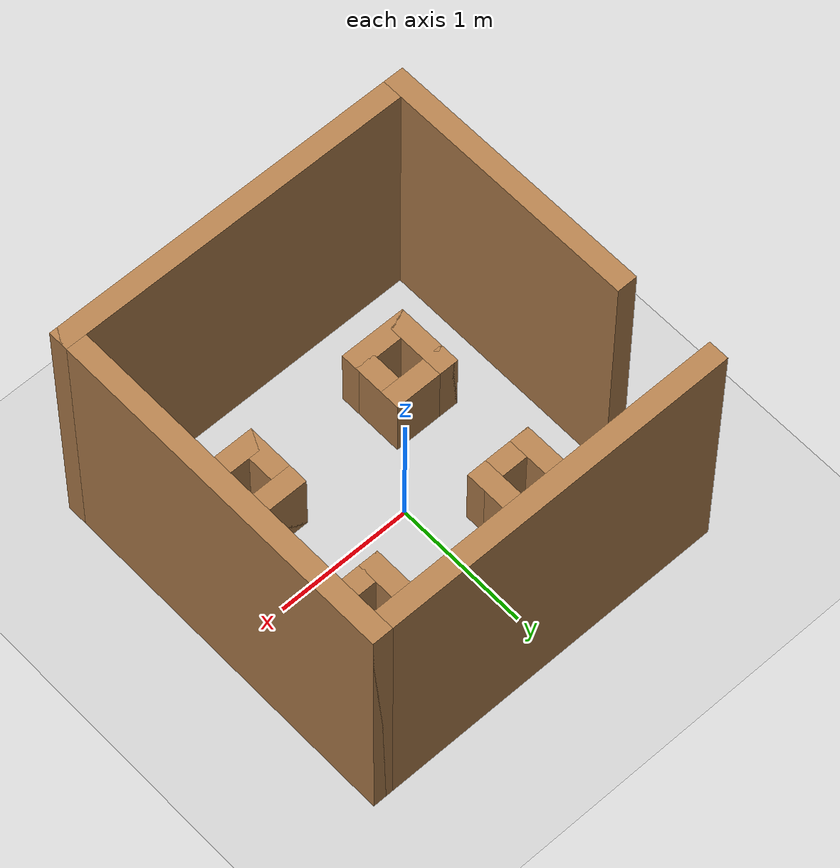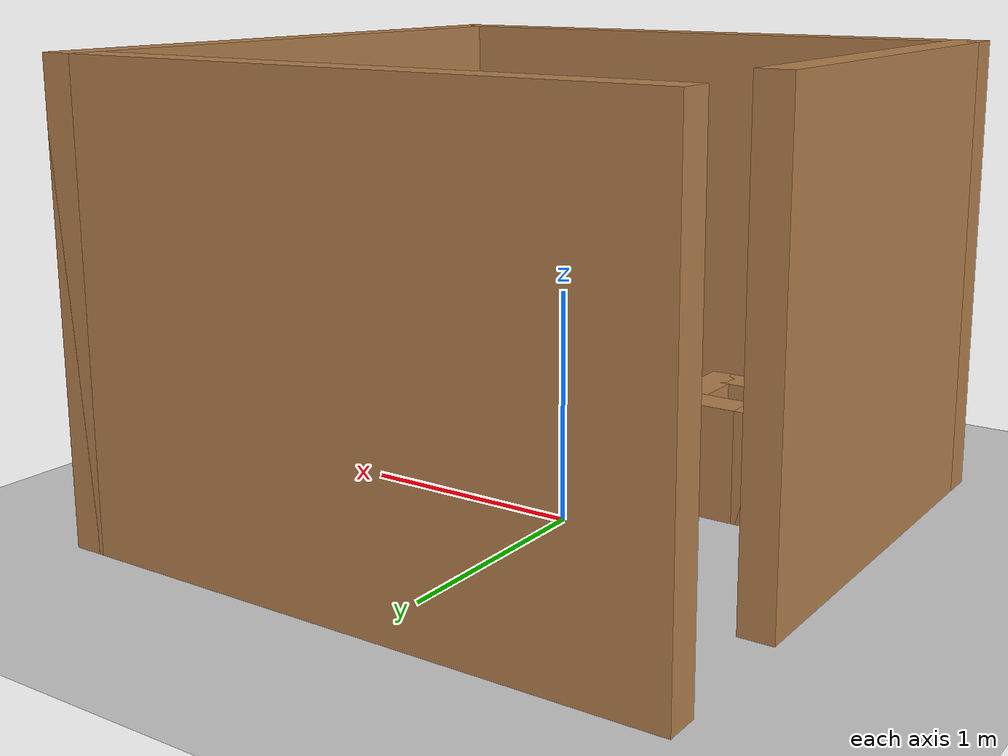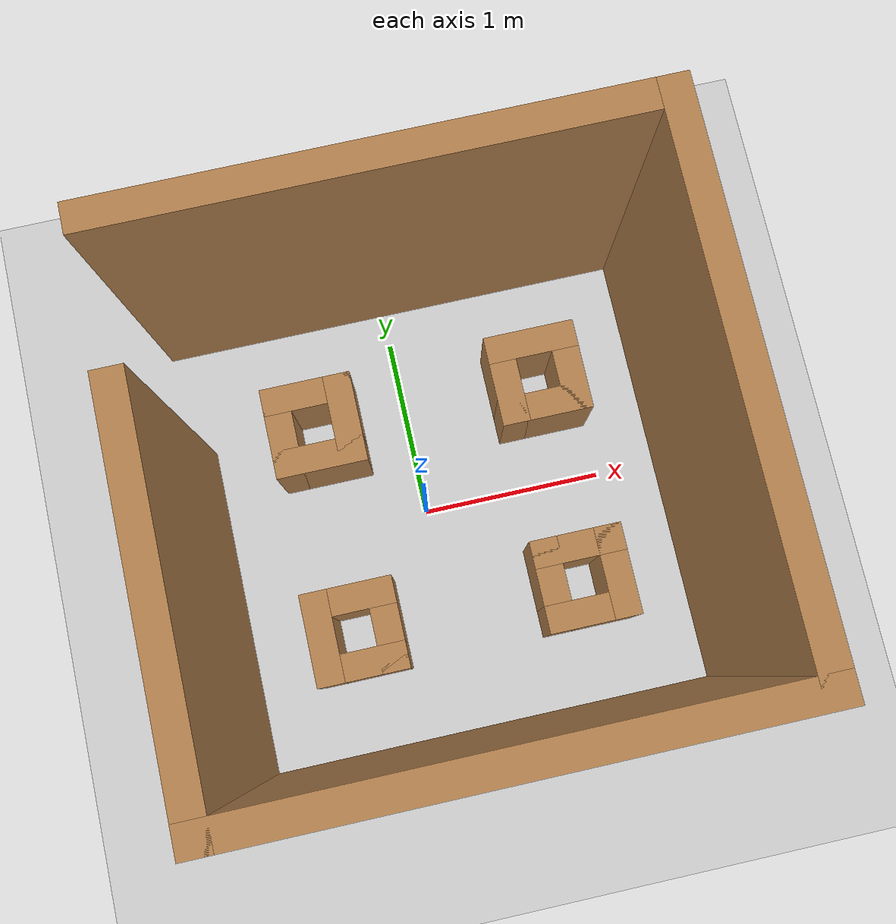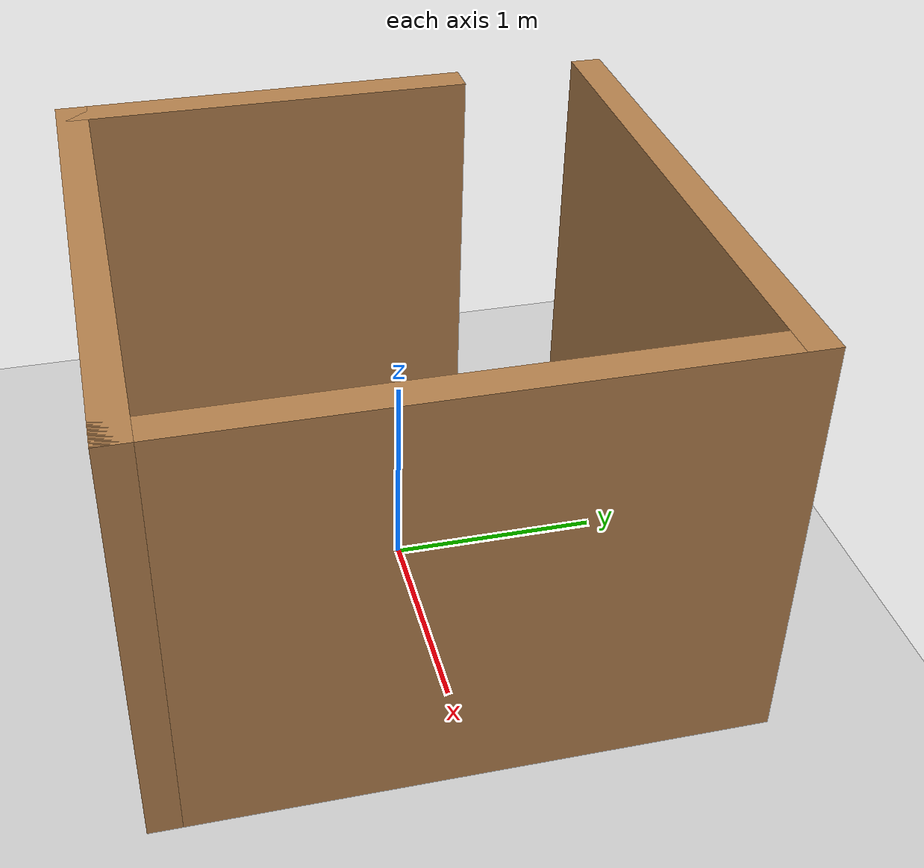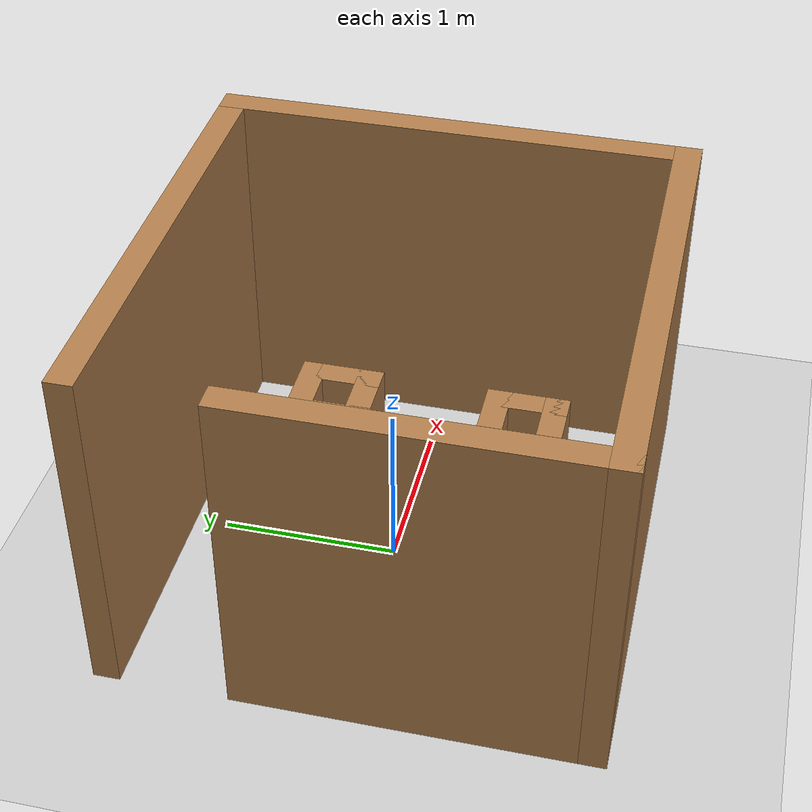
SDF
<sdf version="1.6">
 <world name="default">
  <light name="sun" type="directional">
   <pose>0 0 10 0 -0 0</pose>
   <diffuse>0.8 0.8 0.8 1</diffuse>
   <specular>0.2 0.2 0.2 1</specular>
   <attenuation>
    <range>1000</range>
    <constant>0.9</constant>
    <linear>0.01</linear>
    <quadratic>0.001</quadratic>
   </attenuation>
   <direction>-0.5 0.1 -0.9</direction>
  </light>
  <model name="ground_plane">
   <static>1</static>
   <link name="link">
    <collision name="collision">
     <geometry><plane><normal>0 0 1</normal><size>100 100</size></plane></geometry>
     <surface>
      <contact><collide_bitmask>65535</collide_bitmask></contact>
      <friction><ode><mu>100</mu><mu2>50</mu2></ode></friction>
     </surface>
    </collision>
    <visual name="visual">
     <cast_shadows>0</cast_shadows>
     <geometry><plane><normal>0 0 1</normal><size>100 100</size></plane></geometry>
     <material>
      <script><uri>file://media/materials/scripts/gazebo.material</uri><name>Gazebo/Grey</name></script>
     </material>
    </visual>
   </link>
  </model>
  <gravity>0 0 -9.8</gravity>
  <magnetic_field>6e-06 2.3e-05 -4.2e-05</magnetic_field>
  <atmosphere type="adiabatic"/>
  <physics name="default_physics" default="0" type="ode">
   <max_step_size>0.001</max_step_size>
   <real_time_factor>1</real_time_factor>
   <real_time_update_rate>1000</real_time_update_rate>
  </physics>
  <scene><ambient>0.4 0.4 0.4 1</ambient><background>0.7 0.7 0.7 1</background><shadows>1</shadows></scene>
  <audio><device>default</device></audio>
  <spherical_coordinates>
   <surface_model>EARTH_WGS84</surface_model>
   <latitude_deg>0</latitude_deg>
   <longitude_deg>0</longitude_deg>
   <elevation>0</elevation>
   <heading_deg>0</heading_deg>
  </spherical_coordinates>
  <model name="aiitra_world1">
   <pose>0.11 -0.03 0 0 -0 0</pose>
   <link name="Wall_0">
    <collision name="Wall_0_Collision">
     <geometry><box><size>0.5 0.15 0.5</size></box></geometry>
     <pose>0 0 0.25 0 -0 0</pose>
    </collision>
    <visual name="Wall_0_Visual">
     <pose>0 0 0.25 0 -0 0</pose>
     <geometry><box><size>0.5 0.15 0.5</size></box></geometry>
     <material>
      <script><uri>file://media/materials/scripts/gazebo.material</uri><name>Gazebo/Wood</name></script>
      <ambient>0.435294 0.796078 0.67451 1</ambient>
     </material>
     <meta><layer>0</layer></meta>
    </visual>
    <pose>-0.615 0.73 0 0 -0 0</pose>
   </link>
   <link name="Wall_1">
    <collision name="Wall_1_Collision">
     <geometry><box><size>0.5 0.15 0.5</size></box></geometry>
     <pose>0 0 0.25 0 -0 0</pose>
    </collision>
    <visual name="Wall_1_Visual">
     <pose>0 0 0.25 0 -0 0</pose>
     <geometry><box><size>0.5 0.15 0.5</size></box></geometry>
     <material>
      <script><uri>file://media/materials/scripts/gazebo.material</uri><name>Gazebo/Wood</name></script>
      <ambient>0.435294 0.796078 0.67451 1</ambient>
     </material>
     <meta><layer>0</layer></meta>
    </visual>
    <pose>-0.44 0.555 0 0 -0 -1.5708</pose>
   </link>
   <link name="Wall_10">
    <collision name="Wall_10_Collision">
     <geometry><box><size>0.5 0.15 0.5</size></box></geometry>
     <pose>0 0 0.25 0 -0 0</pose>
    </collision>
    <visual name="Wall_10_Visual">
     <pose>0 0 0.25 0 -0 0</pose>
     <geometry><box><size>0.5 0.15 0.5</size></box></geometry>
     <material>
      <script><uri>file://media/materials/scripts/gazebo.material</uri><name>Gazebo/Wood</name></script>
      <ambient>0.435294 0.796078 0.67451 1</ambient>
     </material>
     <meta><layer>0</layer></meta>
    </visual>
    <pose>-0.625 -0.4 0 0 -0 0</pose>
   </link>
   <link name="Wall_11">
    <collision name="Wall_11_Collision">
     <geometry><box><size>0.5 0.15 0.5</size></box></geometry>
     <pose>0 0 0.25 0 -0 0</pose>
    </collision>
    <visual name="Wall_11_Visual">
     <pose>0 0 0.25 0 -0 0</pose>
     <geometry><box><size>0.5 0.15 0.5</size></box></geometry>
     <material>
      <script><uri>file://media/materials/scripts/gazebo.material</uri><name>Gazebo/Wood</name></script>
      <ambient>0.435294 0.796078 0.67451 1</ambient>
     </material>
     <meta><layer>0</layer></meta>
    </visual>
    <pose>-0.45 -0.575 0 0 -0 -1.5708</pose>
   </link>
   <link name="Wall_12">
    <collision name="Wall_12_Collision">
     <geometry><box><size>0.5 0.15 0.5</size></box></geometry>
     <pose>0 0 0.25 0 -0 0</pose>
    </collision>
    <visual name="Wall_12_Visual">
     <pose>0 0 0.25 0 -0 0</pose>
     <geometry><box><size>0.5 0.15 0.5</size></box></geometry>
     <material>
      <script><uri>file://media/materials/scripts/gazebo.material</uri><name>Gazebo/Wood</name></script>
      <ambient>0.435294 0.796078 0.67451 1</ambient>
     </material>
     <meta><layer>0</layer></meta>
    </visual>
    <pose>-0.625 -0.75 0 0 -0 3.14159</pose>
   </link>
   <link name="Wall_13">
    <collision name="Wall_13_Collision">
     <geometry><box><size>0.5 0.15 0.5</size></box></geometry>
     <pose>0 0 0.25 0 -0 0</pose>
    </collision>
    <visual name="Wall_13_Visual">
     <pose>0 0 0.25 0 -0 0</pose>
     <geometry><box><size>0.5 0.15 0.5</size></box></geometry>
     <material>
      <script><uri>file://media/materials/scripts/gazebo.material</uri><name>Gazebo/Wood</name></script>
      <ambient>0.435294 0.796078 0.67451 1</ambient>
     </material>
     <meta><layer>0</layer></meta>
    </visual>
    <pose>-0.8 -0.575 0 0 -0 1.5708</pose>
   </link>
   <link name="Wall_15">
    <collision name="Wall_15_Collision">
     <geometry><box><size>0.5 0.15 0.5</size></box></geometry>
     <pose>0 0 0.25 0 -0 0</pose>
    </collision>
    <visual name="Wall_15_Visual">
     <pose>0 0 0.25 0 -0 0</pose>
     <geometry><box><size>0.5 0.15 0.5</size></box></geometry>
     <material>
      <script><uri>file://media/materials/scripts/gazebo.material</uri><name>Gazebo/Wood</name></script>
      <ambient>0.435294 0.796078 0.67451 1</ambient>
     </material>
     <meta><layer>0</layer></meta>
    </visual>
    <pose>0.625 -0.39 0 0 -0 0</pose>
   </link>
   <link name="Wall_16">
    <collision name="Wall_16_Collision">
     <geometry><box><size>0.5 0.15 0.5</size></box></geometry>
     <pose>0 0 0.25 0 -0 0</pose>
    </collision>
    <visual name="Wall_16_Visual">
     <pose>0 0 0.25 0 -0 0</pose>
     <geometry><box><size>0.5 0.15 0.5</size></box></geometry>
     <material>
      <script><uri>file://media/materials/scripts/gazebo.material</uri><name>Gazebo/Wood</name></script>
      <ambient>0.435294 0.796078 0.67451 1</ambient>
     </material>
     <meta><layer>0</layer></meta>
    </visual>
    <pose>0.8 -0.565 0 0 -0 -1.5708</pose>
   </link>
   <link name="Wall_17">
    <collision name="Wall_17_Collision">
     <geometry><box><size>0.5 0.15 0.5</size></box></geometry>
     <pose>0 0 0.25 0 -0 0</pose>
    </collision>
    <visual name="Wall_17_Visual">
     <pose>0 0 0.25 0 -0 0</pose>
     <geometry><box><size>0.5 0.15 0.5</size></box></geometry>
     <material>
      <script><uri>file://media/materials/scripts/gazebo.material</uri><name>Gazebo/Wood</name></script>
      <ambient>0.435294 0.796078 0.67451 1</ambient>
     </material>
     <meta><layer>0</layer></meta>
    </visual>
    <pose>0.625 -0.74 0 0 -0 3.14159</pose>
   </link>
   <link name="Wall_18">
    <collision name="Wall_18_Collision">
     <geometry><box><size>0.5 0.15 0.5</size></box></geometry>
     <pose>0 0 0.25 0 -0 0</pose>
    </collision>
    <visual name="Wall_18_Visual">
     <pose>0 0 0.25 0 -0 0</pose>
     <geometry><box><size>0.5 0.15 0.5</size></box></geometry>
     <material>
      <script><uri>file://media/materials/scripts/gazebo.material</uri><name>Gazebo/Wood</name></script>
      <ambient>0.435294 0.796078 0.67451 1</ambient>
     </material>
     <meta><layer>0</layer></meta>
    </visual>
    <pose>0.45 -0.565 0 0 -0 1.5708</pose>
   </link>
   <link name="Wall_2">
    <collision name="Wall_2_Collision">
     <geometry><box><size>0.5 0.15 0.5</size></box></geometry>
     <pose>0 0 0.25 0 -0 0</pose>
    </collision>
    <visual name="Wall_2_Visual">
     <pose>0 0 0.25 0 -0 0</pose>
     <geometry><box><size>0.5 0.15 0.5</size></box></geometry>
     <material>
      <script><uri>file://media/materials/scripts/gazebo.material</uri><name>Gazebo/Wood</name></script>
      <ambient>0.435294 0.796078 0.67451 1</ambient>
     </material>
     <meta><layer>0</layer></meta>
    </visual>
    <pose>-0.615 0.38 0 0 -0 3.14159</pose>
   </link>
   <link name="Wall_20">
    <collision name="Wall_20_Collision">
     <geometry><box><size>2.75 0.15 2</size></box></geometry>
     <pose>0 0 1 0 -0 0</pose>
    </collision>
    <visual name="Wall_20_Visual">
     <pose>0 0 1 0 -0 0</pose>
     <geometry><box><size>2.75 0.15 2</size></box></geometry>
     <material>
      <script><uri>file://media/materials/scripts/gazebo.material</uri><name>Gazebo/Wood</name></script>
      <ambient>0.996078 0.47451 0.0196078 1</ambient>
     </material>
     <meta><layer>0</layer></meta>
    </visual>
    <pose>0 1.3 0 0 -0 0</pose>
   </link>
   <link name="Wall_21">
    <collision name="Wall_21_Collision">
     <geometry><box><size>2.75 0.15 2</size></box></geometry>
     <pose>0 0 1 0 -0 0</pose>
    </collision>
    <visual name="Wall_21_Visual">
     <pose>0 0 1 0 -0 0</pose>
     <geometry><box><size>2.75 0.15 2</size></box></geometry>
     <material>
      <script><uri>file://media/materials/scripts/gazebo.material</uri><name>Gazebo/Wood</name></script>
      <ambient>0.996078 0.47451 0.0196078 1</ambient>
     </material>
     <meta><layer>0</layer></meta>
    </visual>
    <pose>1.3 -0 0 0 -0 -1.5708</pose>
   </link>
   <link name="Wall_22">
    <collision name="Wall_22_Collision">
     <geometry><box><size>2.75 0.15 2</size></box></geometry>
     <pose>0 0 1 0 -0 0</pose>
    </collision>
    <visual name="Wall_22_Visual">
     <pose>0 0 1 0 -0 0</pose>
     <geometry><box><size>2.75 0.15 2</size></box></geometry>
     <material>
      <script><uri>file://media/materials/scripts/gazebo.material</uri><name>Gazebo/Wood</name></script>
      <ambient>0.996078 0.47451 0.0196078 1</ambient>
     </material>
     <meta><layer>0</layer></meta>
    </visual>
    <pose>0 -1.3 0 0 -0 3.14159</pose>
   </link>
   <link name="Wall_23">
    <collision name="Wall_23_Collision">
     <geometry><box><size>2 0.15 2</size></box></geometry>
     <pose>0 0 1 0 -0 0</pose>
    </collision>
    <visual name="Wall_23_Visual">
     <pose>0 0 1 0 -0 0</pose>
     <geometry><box><size>2 0.15 2</size></box></geometry>
     <material>
      <script><uri>file://media/materials/scripts/gazebo.material</uri><name>Gazebo/Wood</name></script>
      <ambient>0.996078 0.47451 0.0196078 1</ambient>
     </material>
     <meta><layer>0</layer></meta>
    </visual>
    <pose>-1.3 -0.375 0 0 -0 1.5708</pose>
   </link>
   <link name="Wall_3">
    <collision name="Wall_3_Collision">
     <geometry><box><size>0.5 0.15 0.5</size></box></geometry>
     <pose>0 0 0.25 0 -0 0</pose>
    </collision>
    <visual name="Wall_3_Visual">
     <pose>0 0 0.25 0 -0 0</pose>
     <geometry><box><size>0.5 0.15 0.5</size></box></geometry>
     <material>
      <script><uri>file://media/materials/scripts/gazebo.material</uri><name>Gazebo/Wood</name></script>
      <ambient>0.435294 0.796078 0.67451 1</ambient>
     </material>
     <meta><layer>0</layer></meta>
    </visual>
    <pose>-0.79 0.555 0 0 -0 1.5708</pose>
   </link>
   <link name="Wall_5">
    <collision name="Wall_5_Collision">
     <geometry><box><size>0.5 0.15 0.5</size></box></geometry>
     <pose>0 0 0.25 0 -0 0</pose>
    </collision>
    <visual name="Wall_5_Visual">
     <pose>0 0 0.25 0 -0 0</pose>
     <geometry><box><size>0.5 0.15 0.5</size></box></geometry>
     <material>
      <script><uri>file://media/materials/scripts/gazebo.material</uri><name>Gazebo/Wood</name></script>
      <ambient>0.435294 0.796078 0.67451 1</ambient>
     </material>
     <meta><layer>0</layer></meta>
    </visual>
    <pose>0.635 0.75 0 0 -0 0</pose>
   </link>
   <link name="Wall_6">
    <collision name="Wall_6_Collision">
     <geometry><box><size>0.5 0.15 0.5</size></box></geometry>
     <pose>0 0 0.25 0 -0 0</pose>
    </collision>
    <visual name="Wall_6_Visual">
     <pose>0 0 0.25 0 -0 0</pose>
     <geometry><box><size>0.5 0.15 0.5</size></box></geometry>
     <material>
      <script><uri>file://media/materials/scripts/gazebo.material</uri><name>Gazebo/Wood</name></script>
      <ambient>0.435294 0.796078 0.67451 1</ambient>
     </material>
     <meta><layer>0</layer></meta>
    </visual>
    <pose>0.81 0.575 0 0 -0 -1.5708</pose>
   </link>
   <link name="Wall_7">
    <collision name="Wall_7_Collision">
     <geometry><box><size>0.5 0.15 0.5</size></box></geometry>
     <pose>0 0 0.25 0 -0 0</pose>
    </collision>
    <visual name="Wall_7_Visual">
     <pose>0 0 0.25 0 -0 0</pose>
     <geometry><box><size>0.5 0.15 0.5</size></box></geometry>
     <material>
      <script><uri>file://media/materials/scripts/gazebo.material</uri><name>Gazebo/Wood</name></script>
      <ambient>0.435294 0.796078 0.67451 1</ambient>
     </material>
     <meta><layer>0</layer></meta>
    </visual>
    <pose>0.635 0.4 0 0 -0 3.14159</pose>
   </link>
   <link name="Wall_8">
    <collision name="Wall_8_Collision">
     <geometry><box><size>0.5 0.15 0.5</size></box></geometry>
     <pose>0 0 0.25 0 -0 0</pose>
    </collision>
    <visual name="Wall_8_Visual">
     <pose>0 0 0.25 0 -0 0</pose>
     <geometry><box><size>0.5 0.15 0.5</size></box></geometry>
     <material>
      <script><uri>file://media/materials/scripts/gazebo.material</uri><name>Gazebo/Wood</name></script>
      <ambient>0.435294 0.796078 0.67451 1</ambient>
     </material>
     <meta><layer>0</layer></meta>
    </visual>
    <pose>0.46 0.575 0 0 -0 1.5708</pose>
   </link>
   <static>1</static>
  </model>
 </world>
</sdf>
